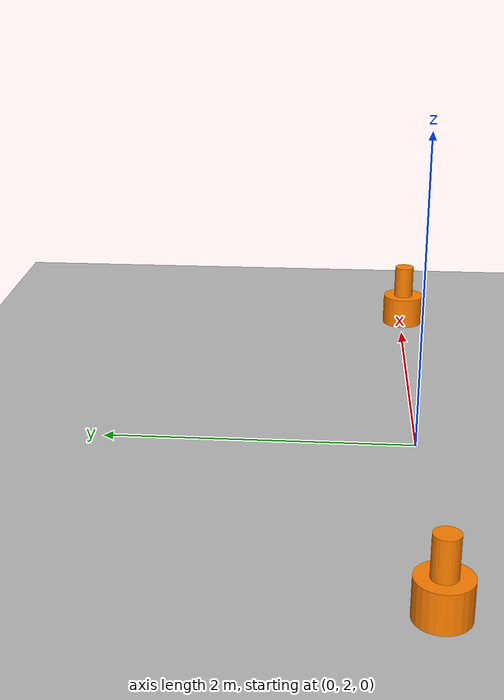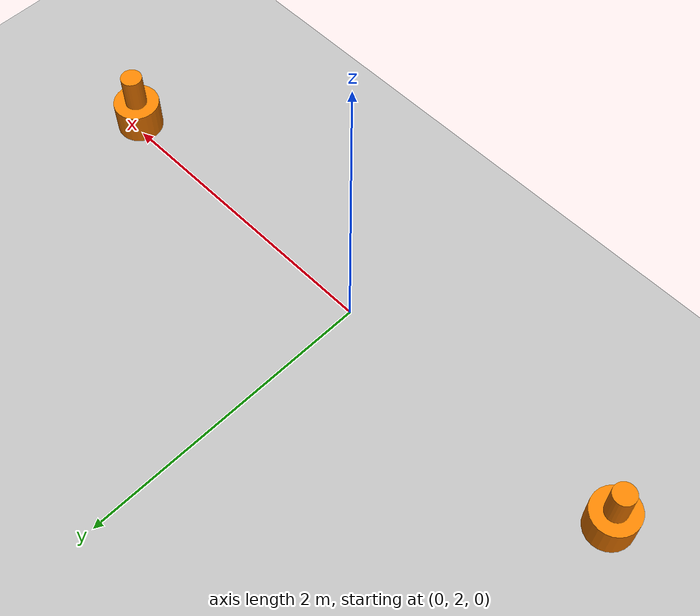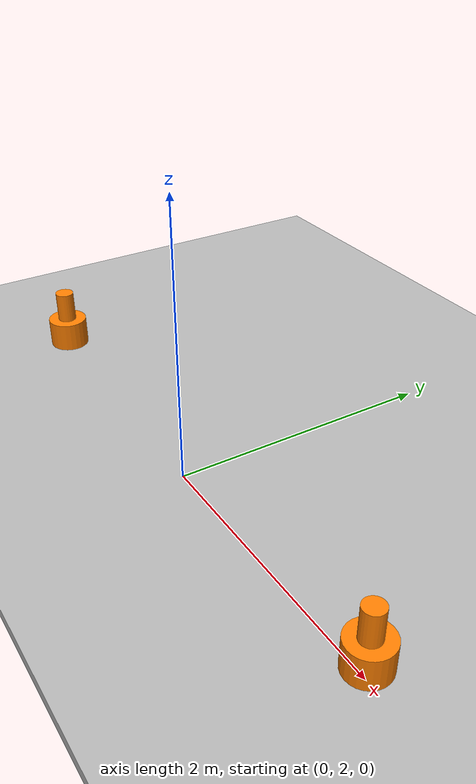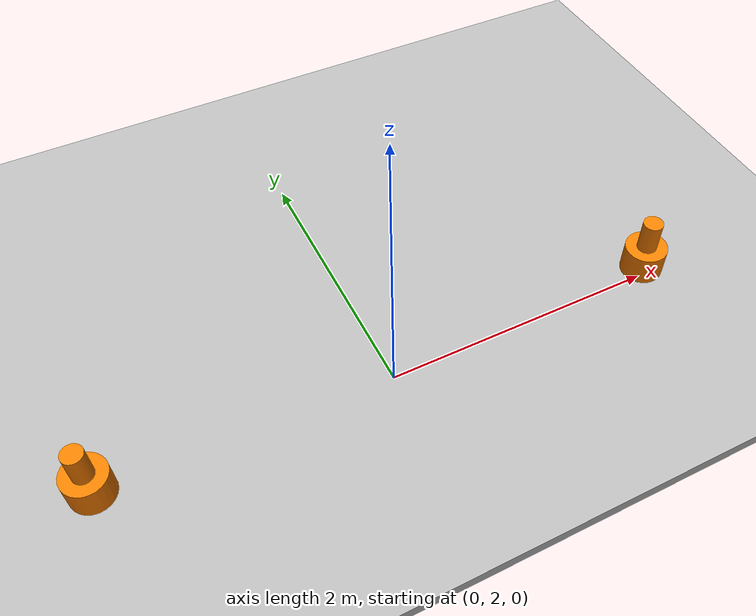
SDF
<?xml version="1.0" ?>
<sdf version="1.6">
  <world name="template">

    <physics type="ode">
      <max_step_size>0.001</max_step_size>
      <real_time_update_rate>1000</real_time_update_rate>
    </physics>

    <!-- Sun -->
    <light type="directional" name="sun">
      <cast_shadows>true</cast_shadows>
      <pose>0 0 10 0 0 0</pose>
      <diffuse>1 1 1 1</diffuse>
      <specular>0.2 0.2 0.2 1</specular>
      <direction>-0.5 0.1 -0.9</direction>
    </light>

    <!-- Static Floor -->
    <include>
      <uri>model://floor</uri>
      <pose>0 0 0 0 0 0</pose>
    </include>

    <gui fullscreen='0'>
      <camera name='user_camera'>
        <pose>-4 -16 4 0 0.3 1.2</pose>       <!-- SETS WHERE CAMERA STARTS AT-->
        <view_controller>orbit</view_controller>
      </camera>
    </gui>

    <include>
      <uri>model://cone</uri>
      <name>cone_1</name> <!-- Needs a unique identifier-->
      <pose>2 2 0.1 0 0 0</pose>
    </include>

    <include>
      <uri>model://cone</uri>
      <name>cone_2</name> <!-- Needs a unique identifier-->
      <pose>-2 2 0.1 0 0 0</pose>
    </include>
  </world>
</sdf>

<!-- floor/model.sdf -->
<sdf version="1.6">
  <model name="custom_course">
    <static>true</static>
    <link name="link">
      <collision name="collision">
        <geometry>
          <box>
            <size>20 20 0.1</size> <!-- 20m x 20m wide, 10cm thick -->
          </box>
        </geometry>
      </collision>
      <visual name="visual">
        <geometry>
          <box>
            <size>20 20 0.1</size>
          </box>
        </geometry>
        <material>
          <script>
            <uri>model://floor/materials/scripts</uri>
            <uri>model://floor/materials/textures</uri>
            <name>CustomCourse/Diffuse</name>
          </script>
        </material>
      </visual>
    </link>
  </model>
</sdf>

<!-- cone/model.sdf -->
<sdf version="1.8">
  <model name="cone">
    <static>true</static>
    <link name="link">
      <!-- Base cylinder (wider bottom) -->
      <collision name="collision_base">
        <geometry>
          <cylinder>
            <radius>0.15</radius>
            <length>0.22</length>
          </cylinder>
        </geometry>
        <pose>0 0 0.11 0 0 0</pose>
      </collision>
      <visual name="visual_base">
        <geometry>
          <cylinder>
            <radius>0.15</radius>
            <length>0.22</length>
          </cylinder>
        </geometry>
        <pose>0 0 0.11 0 0 0</pose>
        <material>
          <ambient>1.0 0.5 0.0 1</ambient>
          <diffuse>1.0 0.5 0.0 1</diffuse>
          <specular>0.3 0.3 0.3 1</specular>
        </material>
      </visual>
      <!-- Top cylinder (narrower top) -->
      <collision name="collision_top">
        <geometry>
          <cylinder>
            <radius>0.07</radius>
            <length>0.23</length>
          </cylinder>
        </geometry>
        <pose>0 0 0.335 0 0 0</pose>
      </collision>
      <visual name="visual_top">
        <geometry>
          <cylinder>
            <radius>0.07</radius>
            <length>0.23</length>
          </cylinder>
        </geometry>
        <pose>0 0 0.335 0 0 0</pose>
        <material>
          <ambient>1.0 0.5 0.0 1</ambient>
          <diffuse>1.0 0.5 0.0 1</diffuse>
          <specular>0.3 0.3 0.3 1</specular>
        </material>
      </visual>
    </link>
  </model>
</sdf>
